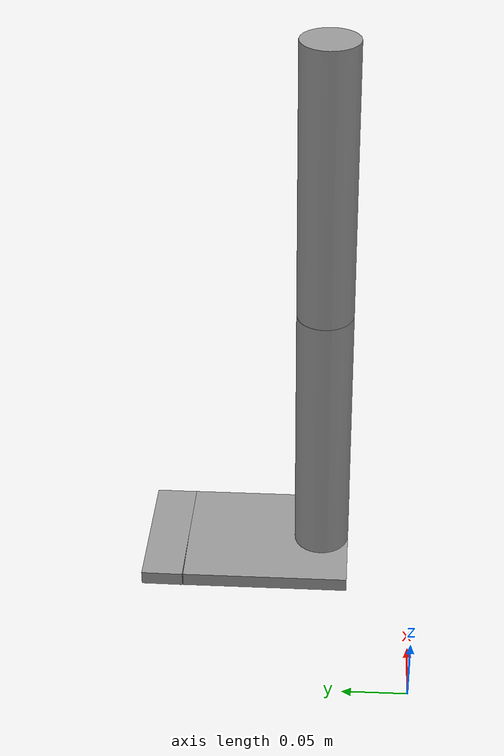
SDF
<?xml version='1.0'?>
<sdf version='1.6'>
  <model name='full-leg'>
    <link name='link_0'>
      <inertial>
        <mass>0.0847963</mass>
        <inertia>
          <ixx>0.00010908</ixx>
          <ixy>0</ixy>
          <ixz>0</ixz>
          <iyy>7.137e-05</iyy>
          <iyz>0</iyz>
          <izz>0.00017903</izz>
        </inertia>
        <pose>0 0 0 0 -0 0</pose>
      </inertial>
      <pose>0.065943 0.108898 0.091666 0 -0 0</pose>
      <gravity>1</gravity>
      <self_collide>0</self_collide>
      <kinematic>0</kinematic>
      <enable_wind>0</enable_wind>
      <visual name='visual'>
        <pose>0 0 0 0 -0 0</pose>
        <geometry>
          <box>
            <size>0.1 0.12 0.01</size>
          </box>
        </geometry>
        <material>
          <lighting>1</lighting>
          <script>
            <uri>file://media/materials/scripts/gazebo.material</uri>
            <name>Gazebo/Grey</name>
          </script>
          <shader type='pixel'>
            <normal_map>__default__</normal_map>
          </shader>
          <ambient>0.3 0.3 0.3 1</ambient>
          <diffuse>0.7 0.7 0.7 1</diffuse>
          <specular>0.01 0.01 0.01 1</specular>
          <emissive>0 0 0 1</emissive>
        </material>
        <transparency>0</transparency>
        <cast_shadows>1</cast_shadows>
      </visual>
      <collision name='collision'>
        <laser_retro>0</laser_retro>
        <max_contacts>10</max_contacts>
        <pose>0 0 0 0 -0 0</pose>
        <geometry>
          <box>
            <size>0.1 0.12 0.01</size>
          </box>
        </geometry>
        <surface>
          <friction>
            <ode>
              <mu>1</mu>
              <mu2>1</mu2>
              <fdir1>0 0 0</fdir1>
              <slip1>0</slip1>
              <slip2>0</slip2>
            </ode>
            <torsional>
              <coefficient>1</coefficient>
              <patch_radius>0</patch_radius>
              <surface_radius>0</surface_radius>
              <use_patch_radius>1</use_patch_radius>
              <ode>
                <slip>0</slip>
              </ode>
            </torsional>
          </friction>
          <bounce>
            <restitution_coefficient>0</restitution_coefficient>
            <threshold>1e+06</threshold>
          </bounce>
          <contact>
            <collide_without_contact>0</collide_without_contact>
            <collide_without_contact_bitmask>1</collide_without_contact_bitmask>
            <collide_bitmask>1</collide_bitmask>
            <ode>
              <soft_cfm>0</soft_cfm>
              <soft_erp>0.2</soft_erp>
              <kp>1e+13</kp>
              <kd>1</kd>
              <max_vel>0.01</max_vel>
              <min_depth>0</min_depth>
            </ode>
            <bullet>
              <split_impulse>1</split_impulse>
              <split_impulse_penetration_threshold>-0.01</split_impulse_penetration_threshold>
              <soft_cfm>0</soft_cfm>
              <soft_erp>0.2</soft_erp>
              <kp>1e+13</kp>
              <kd>1</kd>
            </bullet>
          </contact>
        </surface>
      </collision>
    </link>
    <link name='link_0_clone'>
      <inertial>
        <mass>0.0847963</mass>
        <inertia>
          <ixx>0.00010908</ixx>
          <ixy>0</ixy>
          <ixz>0</ixz>
          <iyy>7.137e-05</iyy>
          <iyz>0</iyz>
          <izz>0.00017903</izz>
        </inertia>
        <pose>0 0 0 0 -0 0</pose>
      </inertial>
      <pose>0.065943 0.183898 0.091666 0 0 -0.01</pose>
      <gravity>1</gravity>
      <self_collide>0</self_collide>
      <kinematic>0</kinematic>
      <enable_wind>0</enable_wind>
      <visual name='visual'>
        <pose>0 0 0 0 -0 0</pose>
        <geometry>
          <box>
            <size>0.1 0.03 0.01</size>
          </box>
        </geometry>
        <material>
          <lighting>1</lighting>
          <script>
            <uri>file://media/materials/scripts/gazebo.material</uri>
            <name>Gazebo/Grey</name>
          </script>
          <shader type='pixel'>
            <normal_map>__default__</normal_map>
          </shader>
          <ambient>0.3 0.3 0.3 1</ambient>
          <diffuse>0.7 0.7 0.7 1</diffuse>
          <specular>0.01 0.01 0.01 1</specular>
          <emissive>0 0 0 1</emissive>
        </material>
        <transparency>0</transparency>
        <cast_shadows>1</cast_shadows>
      </visual>
      <collision name='collision'>
        <laser_retro>0</laser_retro>
        <max_contacts>10</max_contacts>
        <pose>0 0 0 0 -0 0</pose>
        <geometry>
          <box>
            <size>0.1 0.03 0.01</size>
          </box>
        </geometry>
        <surface>
          <friction>
            <ode>
              <mu>1</mu>
              <mu2>1</mu2>
              <fdir1>0 0 0</fdir1>
              <slip1>0</slip1>
              <slip2>0</slip2>
            </ode>
            <torsional>
              <coefficient>1</coefficient>
              <patch_radius>0</patch_radius>
              <surface_radius>0</surface_radius>
              <use_patch_radius>1</use_patch_radius>
              <ode>
                <slip>0</slip>
              </ode>
            </torsional>
          </friction>
          <bounce>
            <restitution_coefficient>0</restitution_coefficient>
            <threshold>1e+06</threshold>
          </bounce>
          <contact>
            <collide_without_contact>0</collide_without_contact>
            <collide_without_contact_bitmask>1</collide_without_contact_bitmask>
            <collide_bitmask>1</collide_bitmask>
            <ode>
              <soft_cfm>0</soft_cfm>
              <soft_erp>0.2</soft_erp>
              <kp>1e+13</kp>
              <kd>1</kd>
              <max_vel>0.01</max_vel>
              <min_depth>0</min_depth>
            </ode>
            <bullet>
              <split_impulse>1</split_impulse>
              <split_impulse_penetration_threshold>-0.01</split_impulse_penetration_threshold>
              <soft_cfm>0</soft_cfm>
              <soft_erp>0.2</soft_erp>
              <kp>1e+13</kp>
              <kd>1</kd>
            </bullet>
          </contact>
        </surface>
      </collision>
    </link>
    <link name='link_1'>
      <inertial>
        <mass>1</mass>
        <inertia>
          <ixx>0.145833</ixx>
          <ixy>0</ixy>
          <ixz>0</ixz>
          <iyy>0.145833</iyy>
          <iyz>0</iyz>
          <izz>0.125</izz>
        </inertia>
        <pose>0 0 0 0 -0 0</pose>
      </inertial>
      <pose>0.065943 0.068898 0.191666 0 -0 0</pose>
      <gravity>1</gravity>
      <self_collide>0</self_collide>
      <kinematic>0</kinematic>
      <enable_wind>0</enable_wind>
      <visual name='visual'>
        <pose>0 0 0 0 -0 0</pose>
        <geometry>
          <cylinder>
            <radius>0.02</radius>
            <length>0.2</length>
          </cylinder>
        </geometry>
        <material>
          <lighting>1</lighting>
          <script>
            <uri>file://media/materials/scripts/gazebo.material</uri>
            <name>Gazebo/Grey</name>
          </script>
          <shader type='pixel'>
            <normal_map>__default__</normal_map>
          </shader>
          <ambient>0.3 0.3 0.3 1</ambient>
          <diffuse>0.7 0.7 0.7 1</diffuse>
          <specular>0.01 0.01 0.01 1</specular>
          <emissive>0 0 0 1</emissive>
        </material>
        <transparency>0</transparency>
        <cast_shadows>1</cast_shadows>
      </visual>
      <collision name='collision'>
        <laser_retro>0</laser_retro>
        <max_contacts>10</max_contacts>
        <pose>0 0 0 0 -0 0</pose>
        <geometry>
          <cylinder>
            <radius>0.02</radius>
            <length>0.2</length>
          </cylinder>
        </geometry>
        <surface>
          <friction>
            <ode>
              <mu>1</mu>
              <mu2>1</mu2>
              <fdir1>0 0 0</fdir1>
              <slip1>0</slip1>
              <slip2>0</slip2>
            </ode>
            <torsional>
              <coefficient>1</coefficient>
              <patch_radius>0</patch_radius>
              <surface_radius>0</surface_radius>
              <use_patch_radius>1</use_patch_radius>
              <ode>
                <slip>0</slip>
              </ode>
            </torsional>
          </friction>
          <bounce>
            <restitution_coefficient>0</restitution_coefficient>
            <threshold>1e+06</threshold>
          </bounce>
          <contact>
            <collide_without_contact>0</collide_without_contact>
            <collide_without_contact_bitmask>1</collide_without_contact_bitmask>
            <collide_bitmask>1</collide_bitmask>
            <ode>
              <soft_cfm>0</soft_cfm>
              <soft_erp>0.2</soft_erp>
              <kp>1e+13</kp>
              <kd>1</kd>
              <max_vel>0.01</max_vel>
              <min_depth>0</min_depth>
            </ode>
            <bullet>
              <split_impulse>1</split_impulse>
              <split_impulse_penetration_threshold>-0.01</split_impulse_penetration_threshold>
              <soft_cfm>0</soft_cfm>
              <soft_erp>0.2</soft_erp>
              <kp>1e+13</kp>
              <kd>1</kd>
            </bullet>
          </contact>
        </surface>
      </collision>
    </link>
    <link name='link_1_clone'>
      <inertial>
        <mass>1</mass>
        <inertia>
          <ixx>0.145833</ixx>
          <ixy>0</ixy>
          <ixz>0</ixz>
          <iyy>0.145833</iyy>
          <iyz>0</iyz>
          <izz>0.125</izz>
        </inertia>
        <pose>0 0 0 0 -0 0</pose>
      </inertial>
      <pose>0.065943 0.068898 0.391666 0 -0 0</pose>
      <gravity>1</gravity>
      <self_collide>0</self_collide>
      <kinematic>0</kinematic>
      <enable_wind>0</enable_wind>
      <visual name='visual'>
        <pose>0 0 0 0 -0 0</pose>
        <geometry>
          <cylinder>
            <radius>0.02</radius>
            <length>0.2</length>
          </cylinder>
        </geometry>
        <material>
          <lighting>1</lighting>
          <script>
            <uri>file://media/materials/scripts/gazebo.material</uri>
            <name>Gazebo/Grey</name>
          </script>
          <shader type='pixel'>
            <normal_map>__default__</normal_map>
          </shader>
          <ambient>0.3 0.3 0.3 1</ambient>
          <diffuse>0.7 0.7 0.7 1</diffuse>
          <specular>0.01 0.01 0.01 1</specular>
          <emissive>0 0 0 1</emissive>
        </material>
        <transparency>0</transparency>
        <cast_shadows>1</cast_shadows>
      </visual>
      <collision name='collision'>
        <laser_retro>0</laser_retro>
        <max_contacts>10</max_contacts>
        <pose>0 0 0 0 -0 0</pose>
        <geometry>
          <cylinder>
            <radius>0.02</radius>
            <length>0.2</length>
          </cylinder>
        </geometry>
        <surface>
          <friction>
            <ode>
              <mu>1</mu>
              <mu2>1</mu2>
              <fdir1>0 0 0</fdir1>
              <slip1>0</slip1>
              <slip2>0</slip2>
            </ode>
            <torsional>
              <coefficient>1</coefficient>
              <patch_radius>0</patch_radius>
              <surface_radius>0</surface_radius>
              <use_patch_radius>1</use_patch_radius>
              <ode>
                <slip>0</slip>
              </ode>
            </torsional>
          </friction>
          <bounce>
            <restitution_coefficient>0</restitution_coefficient>
            <threshold>1e+06</threshold>
          </bounce>
          <contact>
            <collide_without_contact>0</collide_without_contact>
            <collide_without_contact_bitmask>1</collide_without_contact_bitmask>
            <collide_bitmask>1</collide_bitmask>
            <ode>
              <soft_cfm>0</soft_cfm>
              <soft_erp>0.2</soft_erp>
              <kp>1e+13</kp>
              <kd>1</kd>
              <max_vel>0.01</max_vel>
              <min_depth>0</min_depth>
            </ode>
            <bullet>
              <split_impulse>1</split_impulse>
              <split_impulse_penetration_threshold>-0.01</split_impulse_penetration_threshold>
              <soft_cfm>0</soft_cfm>
              <soft_erp>0.2</soft_erp>
              <kp>1e+13</kp>
              <kd>1</kd>
            </bullet>
          </contact>
        </surface>
      </collision>
    </link>
    <joint name='link_0_JOINT_0' type='revolute'>
      <parent>link_0</parent>
      <child>link_0_clone</child>
      <pose>0 -0.015 0 0 -0 0</pose>
      <axis>
        <xyz>1 0 0</xyz>
        <limit>
          <lower>-1.79769e+308</lower>
          <upper>1.79769e+308</upper>
          <effort>-1</effort>
          <velocity>-1</velocity>
        </limit>
        <dynamics>
          <spring_reference>0</spring_reference>
          <spring_stiffness>0</spring_stiffness>
          <damping>0</damping>
        </dynamics>
      </axis>
      <physics>
        <ode>
          <limit>
            <cfm>0</cfm>
            <erp>0.2</erp>
          </limit>
          <suspension>
            <cfm>0</cfm>
            <erp>0.2</erp>
          </suspension>
        </ode>
      </physics>
    </joint>
    <joint name='link_0_JOINT_2' type='revolute'>
      <parent>link_0</parent>
      <child>link_1</child>
      <pose>0 0 -0.1 0 -0 0</pose>
      <axis>
        <xyz>1 0 0</xyz>
        <limit>
          <lower>-1.79769e+308</lower>
          <upper>1.79769e+308</upper>
          <effort>-1</effort>
          <velocity>-1</velocity>
        </limit>
        <dynamics>
          <spring_reference>0</spring_reference>
          <spring_stiffness>0</spring_stiffness>
          <damping>0</damping>
        </dynamics>
      </axis>
      <physics>
        <ode>
          <limit>
            <cfm>0</cfm>
            <erp>0.2</erp>
          </limit>
          <suspension>
            <cfm>0</cfm>
            <erp>0.2</erp>
          </suspension>
        </ode>
      </physics>
    </joint>
    <joint name='link_1_JOINT_3' type='revolute'>
      <parent>link_1</parent>
      <child>link_1_clone</child>
      <pose>0 0 -0.1 0 -0 0</pose>
      <axis>
        <xyz>1 0 0</xyz>
        <limit>
          <lower>-1.79769e+308</lower>
          <upper>1.79769e+308</upper>
          <effort>-1</effort>
          <velocity>-1</velocity>
        </limit>
        <dynamics>
          <spring_reference>0</spring_reference>
          <spring_stiffness>0</spring_stiffness>
          <damping>0</damping>
        </dynamics>
      </axis>
      <physics>
        <ode>
          <limit>
            <cfm>0</cfm>
            <erp>0.2</erp>
          </limit>
          <suspension>
            <cfm>0</cfm>
            <erp>0.2</erp>
          </suspension>
        </ode>
      </physics>
    </joint>
    <static>0</static>
    <allow_auto_disable>1</allow_auto_disable>
  </model>
</sdf>
